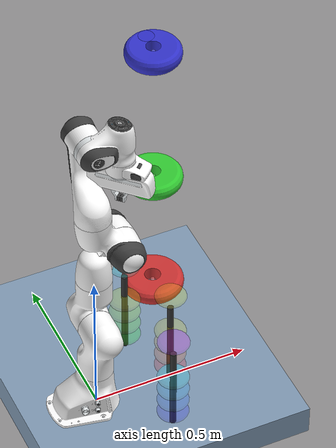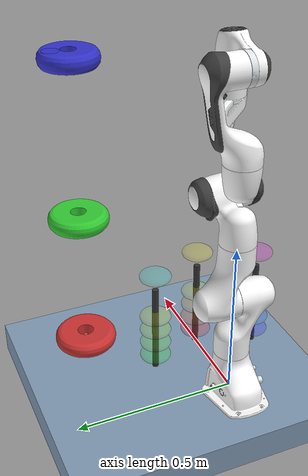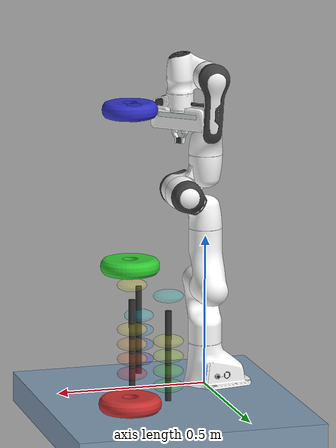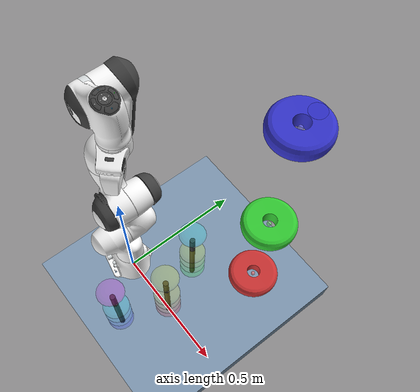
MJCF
<!-- MUJOCO PANDA HANOI SCENE CONFIGURATION                          -->
<!-- This file defines a complete Hanoi Tower solving scene with:     -->
<!-- - Franka Emika Panda robot arm with gripper                     -->
<!-- - Three posts (A, B, C) for the Tower of Hanoi puzzle          -->
<!-- - Three different-sized disks with collision geometry           -->
<!-- - IK target sites for precise manipulation                      -->
<!-- - Proper lighting and visual settings                           -->

<mujoco model="panda_hanoi_scene">

  <!-- GLOBAL SIMULATION SETTINGS                                    -->

  <compiler
    angle="radian"
    meshdir="../../../models/robots/arms/franka_emika_panda/assets"
    autolimits="true"/>

  <option timestep="0.002" integrator="RK4" gravity="0 0 -3.0"
          density="1.0" viscosity="1e-4">
    <flag warmstart="enable"/>
  </option>

  <visual>
    <headlight ambient="0.3 0.3 0.3" diffuse="0.7 0.7 0.7"/>
    <global offwidth="1920" offheight="1080"/>
    <quality shadowsize="2048" offsamples="8"/>
  </visual>

  <!-- DEFAULT CLASSES AND STYLING                                   -->

  <default>
    <!-- Main Panda robot defaults -->
    <default class="panda">
      <material specular="0.5" shininess="0.25" />
      <joint armature="0.1" damping="1" axis="0 0 1" range="-2.8973 2.8973" />
      <general dyntype="none" biastype="affine" ctrlrange="-2.8973 2.8973" forcerange="-87 87" />

      <!-- Gripper finger defaults -->
      <default class="finger">
        <joint axis="0 1 0" type="slide" range="0 0.04" />
      </default>

      <!-- Visual geometry defaults -->
      <default class="visual">
        <geom type="mesh" contype="0" conaffinity="0" group="2" />
      </default>

      <!-- Collision geometry defaults -->
      <default class="collision">
        <geom type="mesh" group="3" />
        <!-- Fingertip collision geometries for precise grasping -->
        <default class="fingertip_pad_collision_1">
          <geom type="box" size="0.0085 0.004 0.0085" pos="0 0.0055 0.0445" material="gripper" />
        </default>
        <default class="fingertip_pad_collision_2">
          <geom type="box" size="0.003 0.002 0.003" pos="0.0055 0.002 0.05" material="gripper" />
        </default>
        <default class="fingertip_pad_collision_3">
          <geom type="box" size="0.003 0.002 0.003" pos="-0.0055 0.002 0.05" material="gripper" />
        </default>
        <default class="fingertip_pad_collision_4">
          <geom type="box" size="0.003 0.002 0.0035" pos="0.0055 0.002 0.0395" material="gripper" />
        </default>
        <default class="fingertip_pad_collision_5">
          <geom type="box" size="0.003 0.002 0.0035" pos="-0.0055 0.002 0.0395" material="gripper" />
        </default>
      </default>
    </default>
  </default>

  <!-- ASSETS: TEXTURES, MATERIALS, AND MESHES                       -->

  <asset>
    <!-- ===================== ENVIRONMENT ASSETS =================== -->
    <texture name="checker_floor" type="2d" builtin="checker"
             rgb1="0.2 0.3 0.4" rgb2="0.8 0.9 1.0" width="128" height="128"/>
    <texture name="gradient_sky" type="skybox" builtin="gradient"
             rgb1="0.4 0.6 0.8" rgb2="0.1 0.2 0.4" width="1024" height="1024"
             mark="random" markrgb="1 1 1"/>
    <material name="floor_material" texture="checker_floor" texrepeat="8 8" reflectance="0.1"/>

    <!-- ===================== ROBOT MATERIALS ====================== -->
    <material class="panda" name="white" rgba="1 1 1 1"/>
    <material class="panda" name="off_white" rgba="0.901961 0.921569 0.929412 1"/>
    <material class="panda" name="black" rgba="0.25 0.25 0.25 1"/>
    <material class="panda" name="green" rgba="0 1 0 1"/>
    <material class="panda" name="gripper" rgba="0.8 0.8 0.8 1"/>
    <material class="panda" name="light_blue" rgba="0.039216 0.541176 0.780392 1"/>

    <!-- ================= ROBOT COLLISION MESHES ================== -->
    <!-- Collision meshes for physics simulation -->
    <mesh name="link0_c" file="link0.stl"/>
    <mesh name="link1_c" file="link1.stl"/>
    <mesh name="link2_c" file="link2.stl"/>
    <mesh name="link3_c" file="link3.stl"/>
    <mesh name="link4_c" file="link4.stl"/>
    <mesh name="link5_c0" file="link5_collision_0.obj"/>
    <mesh name="link5_c1" file="link5_collision_1.obj"/>
    <mesh name="link5_c2" file="link5_collision_2.obj"/>
    <mesh name="link6_c" file="link6.stl"/>
    <mesh name="link7_c" file="link7.stl"/>
    <mesh name="hand_c" file="hand.stl"/>

    <!-- ================== ROBOT VISUAL MESHES ==================== -->
    <!-- Visual meshes for appearance (Link 0 - Base) -->
    <mesh file="link0_0.obj"/>
    <mesh file="link0_1.obj"/>
    <mesh file="link0_2.obj"/>
    <mesh file="link0_3.obj"/>
    <mesh file="link0_4.obj"/>
    <mesh file="link0_5.obj"/>
    <mesh file="link0_7.obj"/>
    <mesh file="link0_8.obj"/>
    <mesh file="link0_9.obj"/>
    <mesh file="link0_10.obj"/>
    <mesh file="link0_11.obj"/>

    <!-- Link 1 visual mesh -->
    <mesh file="link1.obj"/>

    <!-- Link 2 visual mesh -->
    <mesh file="link2.obj"/>

    <!-- Link 3 visual meshes -->
    <mesh file="link3_0.obj"/>
    <mesh file="link3_1.obj"/>
    <mesh file="link3_2.obj"/>
    <mesh file="link3_3.obj"/>

    <!-- Link 4 visual meshes -->
    <mesh file="link4_0.obj"/>
    <mesh file="link4_1.obj"/>
    <mesh file="link4_2.obj"/>
    <mesh file="link4_3.obj"/>

    <!-- Link 5 visual meshes -->
    <mesh file="link5_0.obj"/>
    <mesh file="link5_1.obj"/>
    <mesh file="link5_2.obj"/>

    <!-- Link 6 visual meshes -->
    <mesh file="link6_0.obj"/>
    <mesh file="link6_1.obj"/>
    <mesh file="link6_2.obj"/>
    <mesh file="link6_3.obj"/>
    <mesh file="link6_4.obj"/>
    <mesh file="link6_5.obj"/>
    <mesh file="link6_6.obj"/>
    <mesh file="link6_7.obj"/>
    <mesh file="link6_8.obj"/>
    <mesh file="link6_9.obj"/>
    <mesh file="link6_10.obj"/>
    <mesh file="link6_11.obj"/>
    <mesh file="link6_12.obj"/>
    <mesh file="link6_13.obj"/>
    <mesh file="link6_14.obj"/>
    <mesh file="link6_15.obj"/>
    <mesh file="link6_16.obj"/>

    <!-- Link 7 visual meshes -->
    <mesh file="link7_0.obj"/>
    <mesh file="link7_1.obj"/>
    <mesh file="link7_2.obj"/>
    <mesh file="link7_3.obj"/>
    <mesh file="link7_4.obj"/>
    <mesh file="link7_5.obj"/>
    <mesh file="link7_6.obj"/>
    <mesh file="link7_7.obj"/>

    <!-- Hand/Gripper visual meshes -->
    <mesh file="hand_0.obj"/>
    <mesh file="hand_1.obj"/>
    <mesh file="hand_2.obj"/>
    <mesh file="hand_3.obj"/>
    <mesh file="hand_4.obj"/>

    <!-- Finger visual meshes -->
    <mesh file="finger_0.obj"/>
    <mesh file="finger_1.obj"/>

    <!-- ==================== HANOI DISK MESHES ==================== -->
    <!-- Scaled disk meshes for different sizes -->
    <mesh scale="0.4 0.4 0.5" name="donut_mesh1" file="../../../../../hanoi/models/hanoi_disk.stl"/>
    <mesh scale="0.375 0.375 0.5" name="donut_mesh2" file="../../../../../hanoi/models/hanoi_disk.stl"/>
    <mesh scale="0.35 0.35 0.5" name="donut_mesh3" file="../../../../../hanoi/models/hanoi_disk.stl"/>
  </asset>

  <!-- WORLD BODY: SCENE GEOMETRY AND OBJECTS                        -->

  <worldbody>
    <!-- ==================== LIGHTING SETUP ======================= -->
    <light name="top" pos="0 0 2" mode="trackcom"/>

    <!-- ================= FRANKA EMIKA PANDA ROBOT ================ -->
    <!-- Base link (Link 0) - Robot foundation -->
    <body name="link0" childclass="panda">
      <inertial mass="0.629769" pos="-0.041018 -0.00014 0.049974"
                fullinertia="0.00315 0.00388 0.004285 8.2904e-7 0.00015 8.2299e-6" />
      <!-- Visual components -->
      <geom mesh="link0_0" material="off_white" class="visual" />
      <geom mesh="link0_1" material="black" class="visual" />
      <geom mesh="link0_2" material="off_white" class="visual" />
      <geom mesh="link0_3" material="black" class="visual" />
      <geom mesh="link0_4" material="off_white" class="visual" />
      <geom mesh="link0_5" material="black" class="visual" />
      <geom mesh="link0_7" material="white" class="visual" />
      <geom mesh="link0_8" material="white" class="visual" />
      <geom mesh="link0_9" material="black" class="visual" />
      <geom mesh="link0_10" material="off_white" class="visual" />
      <geom mesh="link0_11" material="white" class="visual" />
      <!-- Collision geometry -->
      <geom mesh="link0_c" class="collision" />

      <!-- Link 1 - First joint -->
      <body name="link1" pos="0 0 0.333">
        <inertial mass="4.970684" pos="0.003875 0.002081 -0.04762"
                  fullinertia="0.70337 0.70661 0.0091170 -0.00013900 0.0067720 0.019169" />
        <joint name="joint1" />
        <geom material="white" mesh="link1" class="visual" />
        <geom mesh="link1_c" class="collision" />

        <!-- Link 2 - Second joint (shoulder) -->
        <body name="link2" quat="1 -1 0 0">
          <inertial mass="0.646926" pos="-0.003141 -0.02872 0.003495"
                    fullinertia="0.0079620 2.8110e-2 2.5995e-2 -3.925e-3 1.0254e-2 7.04e-4" />
          <joint name="joint2" range="-1.7628 1.7628" />
          <geom material="white" mesh="link2" class="visual" />
          <geom mesh="link2_c" class="collision" />

          <!-- Link 3 - Third joint (upper arm) -->
          <body name="link3" pos="0 -0.316 0" quat="1 1 0 0">
            <joint name="joint3" />
            <inertial mass="3.228604" pos="2.7518e-2 3.9252e-2 -6.6502e-2"
                      fullinertia="3.7242e-2 3.6155e-2 1.083e-2 -4.761e-3 -1.1396e-2 -1.2805e-2" />
            <geom mesh="link3_0" material="white" class="visual" />
            <geom mesh="link3_1" material="white" class="visual" />
            <geom mesh="link3_2" material="white" class="visual" />
            <geom mesh="link3_3" material="black" class="visual" />
            <geom mesh="link3_c" class="collision" />

            <!-- Link 4 - Fourth joint (elbow) -->
            <body name="link4" pos="0.0825 0 0" quat="1 1 0 0">
              <inertial mass="3.587895" pos="-5.317e-2 1.04419e-1 2.7454e-2"
                        fullinertia="2.5853e-2 1.9552e-2 2.8323e-2 7.796e-3 -1.332e-3 8.641e-3" />
              <joint name="joint4" range="-3.0718 -0.0698" />
              <geom mesh="link4_0" material="white" class="visual" />
              <geom mesh="link4_1" material="white" class="visual" />
              <geom mesh="link4_2" material="black" class="visual" />
              <geom mesh="link4_3" material="white" class="visual" />
              <geom mesh="link4_c" class="collision" />

              <!-- Link 5 - Fifth joint (forearm) -->
              <body name="link5" pos="-0.0825 0.384 0" quat="1 -1 0 0">
                <inertial mass="1.225946" pos="-1.1953e-2 4.1065e-2 -3.8437e-2"
                          fullinertia="3.5549e-2 2.9474e-2 8.627e-3 -2.117e-3 -4.037e-3 2.29e-4" />
                <joint name="joint5" />
                <geom mesh="link5_0" material="black" class="visual" />
                <geom mesh="link5_1" material="white" class="visual" />
                <geom mesh="link5_2" material="white" class="visual" />
                <geom mesh="link5_c0" class="collision" />
                <geom mesh="link5_c1" class="collision" />
                <geom mesh="link5_c2" class="collision" />

                <!-- Link 6 - Sixth joint (wrist rotate) -->
                <body name="link6" quat="1 1 0 0">
                  <inertial mass="1.666555" pos="6.0149e-2 -1.4117e-2 -1.0517e-2"
                            fullinertia="1.964e-3 4.354e-3 5.433e-3 1.09e-4 -1.158e-3 3.41e-4" />
                  <joint name="joint6" range="-0.0175 3.7525" />
                  <geom mesh="link6_0" material="off_white" class="visual" />
                  <geom mesh="link6_1" material="white" class="visual" />
                  <geom mesh="link6_2" material="black" class="visual" />
                  <geom mesh="link6_3" material="white" class="visual" />
                  <geom mesh="link6_4" material="white" class="visual" />
                  <geom mesh="link6_5" material="white" class="visual" />
                  <geom mesh="link6_6" material="white" class="visual" />
                  <geom mesh="link6_7" material="light_blue" class="visual" />
                  <geom mesh="link6_8" material="light_blue" class="visual" />
                  <geom mesh="link6_9" material="black" class="visual" />
                  <geom mesh="link6_10" material="black" class="visual" />
                  <geom mesh="link6_11" material="white" class="visual" />
                  <geom mesh="link6_12" material="green" class="visual" />
                  <geom mesh="link6_13" material="white" class="visual" />
                  <geom mesh="link6_14" material="black" class="visual" />
                  <geom mesh="link6_15" material="black" class="visual" />
                  <geom mesh="link6_16" material="white" class="visual" />
                  <geom mesh="link6_c" class="collision" />

                  <!-- Link 7 - Seventh joint (wrist bend) -->
                  <body name="link7" pos="0.088 0 0" quat="1 1 0 0">
                    <inertial mass="7.35522e-01" pos="1.0517e-2 -4.252e-3 6.1597e-2"
                              fullinertia="1.2516e-2 1.0027e-2 4.815e-3 -4.28e-4 -1.196e-3 -7.41e-4" />
                    <joint name="joint7" />
                    <geom mesh="link7_0" material="white" class="visual" />
                    <geom mesh="link7_1" material="black" class="visual" />
                    <geom mesh="link7_2" material="black" class="visual" />
                    <geom mesh="link7_3" material="black" class="visual" />
                    <geom mesh="link7_4" material="black" class="visual" />
                    <geom mesh="link7_5" material="black" class="visual" />
                    <geom mesh="link7_6" material="black" class="visual" />
                    <geom mesh="link7_7" material="white" class="visual" />
                    <geom mesh="link7_c" class="collision" />

                    <!-- Hand/Gripper assembly -->
                    <body name="hand" pos="0 0 0.107" quat="0.9238795 0 0 -0.3826834">
                      <inertial mass="0.73" pos="-0.01 0 0.03" diaginertia="0.001 0.0025 0.0017" />
                      <geom mesh="hand_0" material="off_white" class="visual" />
                      <geom mesh="hand_1" material="black" class="visual" />
                      <geom mesh="hand_2" material="black" class="visual" />
                      <geom mesh="hand_3" material="white" class="visual" />
                      <geom mesh="hand_4" material="off_white" class="visual" />
                      <geom mesh="hand_c" class="collision" />

                      <!-- Left finger -->
                      <body name="left_finger" pos="0 0 0.0584">
                        <inertial mass="0.015" pos="0 0 0" diaginertia="2.375e-6 2.375e-6 7.5e-7" />
                        <joint name="finger_joint1" class="finger" />
                        <geom mesh="finger_0" material="off_white" class="visual" />
                        <geom mesh="finger_1" material="black" class="visual" />
                        <geom mesh="finger_0" class="collision" />
                        <!-- Fingertip collision pads for precise grasping -->
                        <geom class="fingertip_pad_collision_1" />
                        <geom class="fingertip_pad_collision_2" />
                        <geom class="fingertip_pad_collision_3" />
                        <geom class="fingertip_pad_collision_4" />
                        <geom class="fingertip_pad_collision_5" />
                      </body>

                      <!-- Right finger -->
                      <body name="right_finger" pos="0 0 0.0584" quat="0 0 0 1">
                        <inertial mass="0.015" pos="0 0 0" diaginertia="2.375e-6 2.375e-6 7.5e-7" />
                        <joint name="finger_joint2" class="finger" />
                        <geom mesh="finger_0" material="off_white" class="visual" />
                        <geom mesh="finger_1" material="black" class="visual" />
                        <geom mesh="finger_0" class="collision" />
                        <!-- Fingertip collision pads for precise grasping -->
                        <geom class="fingertip_pad_collision_1" />
                        <geom class="fingertip_pad_collision_2" />
                        <geom class="fingertip_pad_collision_3" />
                        <geom class="fingertip_pad_collision_4" />
                        <geom class="fingertip_pad_collision_5" />
                      </body>
                    </body>
                  </body>
                </body>
              </body>
            </body>
          </body>
        </body>
      </body>
    </body>

    <!-- =================== ENVIRONMENT OBJECTS =================== -->
    <!-- Floor surface -->
    <geom name="floor" pos="0 0 -0.05" size="2 2 0.05" type="box" material="floor_material"/>

    <!-- ================= HANOI TOWER POSTS ======================= -->
    <!-- Post A (Starting position - typically holds all disks) -->
    <body name="postA" pos="0.25 0 0.15">
      <inertial pos="0 0 0" mass="3" diaginertia="0.005 0.005 0.005"/>
      <geom name="post_blockA" type="cylinder" size="0.01 0.15" rgba="0.2 0.2 0.2 1.0"/>
      <!-- IK target sites above post A at different heights -->
      <site name="postA_base" pos="0 0 -0.10" size="0.05 0.05 0.02" type="ellipsoid" rgba="1 0 0 0.05"/>
      <site name="postA_level1" pos="0 0 -0.05" size="0.05 0.05 0.02" type="ellipsoid" rgba="1 0.3 0 0.05"/>
      <site name="postA_level2" pos="0 0 0.0" size="0.05 0.05 0.02" type="ellipsoid" rgba="1 0.6 0 0.05"/>
      <site name="postA_level3" pos="0 0 0.05" size="0.05 0.05 0.02" type="ellipsoid" rgba="1 0.9 0 0.05"/>
      <site name="postA_approach" pos="0 0 0.20" size="0.05 0.05 0.02" type="ellipsoid" rgba="1 1 0 0.05"/>
    </body>

    <!-- Post B (Intermediate position) -->
    <body name="postB" pos="0.177 0.177 0.15">
      <inertial pos="0 0 0" mass="3" diaginertia="0.005 0.005 0.005"/>
      <geom name="post_blockB" type="cylinder" size="0.01 0.15" rgba="0.2 0.2 0.2 1.0"/>
      <!-- IK target sites above post B at different heights -->
      <site name="postB_base" pos="0 0 -0.1" size="0.05 0.05 0.02" type="ellipsoid" rgba="0 1 0 0.05"/>
      <site name="postB_level1" pos="0 0 -0.05" size="0.05 0.05 0.02" type="ellipsoid" rgba="0.3 1 0 0.05"/>
      <site name="postB_level2" pos="0 0 0.0" size="0.05 0.05 0.02" type="ellipsoid" rgba="0.6 1 0 0.05"/>
      <site name="postB_level3" pos="0 0 0.05" size="0.05 0.05 0.02" type="ellipsoid" rgba="0.9 1 0 0.05"/>
      <site name="postB_approach" pos="0 0 0.20" size="0.05 0.05 0.02" type="ellipsoid" rgba="0 1 1 0.05"/>
    </body>

    <!-- Post C (Final destination) -->
    <body name="postC" pos="0.177 -0.177 0.15">
      <inertial pos="0 0 0" mass="3" diaginertia="0.005 0.005 0.005"/>
      <geom name="post_blockC" type="cylinder" size="0.01 0.15" rgba="0.2 0.2 0.2 1.0"/>
      <!-- IK target sites above post C at different heights -->
      <site name="postC_base" pos="0 0 -0.1" size="0.05 0.05 0.02" type="ellipsoid" rgba="0 0 1 0.05"/>
      <site name="postC_level1" pos="0 0 -0.05" size="0.05 0.05 0.02" type="ellipsoid" rgba="0 0.3 1 0.05"/>
      <site name="postC_level2" pos="0 0 0.0" size="0.05 0.05 0.02" type="ellipsoid" rgba="0 0.6 1 0.05"/>
      <site name="postC_level3" pos="0 0 0.05" size="0.05 0.05 0.02" type="ellipsoid" rgba="0 0.9 1 0.05"/>
      <site name="postC_approach" pos="0 0 0.20" size="0.05 0.05 0.02" type="ellipsoid" rgba="1 0 1 0.05"/>
    </body>

    <!-- ==================== HANOI DISKS ========================== -->

    <!-- Disk 1 (Largest) - Red -->
    <body name="disk_body1" pos="0.354 0.354 0.05">
      <freejoint/>
      <inertial pos="0 0 0" mass="0.25" diaginertia="0.005 0.005 0.005"/>
      <!-- Visual mesh for appearance (no collision) -->
      <geom name="disk_block1_visual" type="mesh" mesh="donut_mesh1" rgba="0.8 0.2 0.2 1"
            contype="0" conaffinity="0"/>
      <!-- IK target sites for grasping disk 1 -->
      <site name="disk1_center" pos="0 0 0" size="0.008" rgba="1 0.5 0.5 0.7"/>
      <!-- Collision geometry: 8 small cylinders arranged in a ring to approximate donut shape -->
      <geom name="disk_seg1_1" type="cylinder" size="0.025 0.025" pos="0.05 0 0" rgba="0.8 0.2 0.2 0"/>
      <geom name="disk_seg1_2" type="cylinder" size="0.025 0.025" pos="0.035 0.035 0" rgba="0.8 0.2 0.2 0"/>
      <geom name="disk_seg1_3" type="cylinder" size="0.025 0.025" pos="0 0.05 0" rgba="0.8 0.2 0.2 0"/>
      <geom name="disk_seg1_4" type="cylinder" size="0.025 0.025" pos="-0.035 0.035 0" rgba="0.8 0.2 0.2 0"/>
      <geom name="disk_seg1_5" type="cylinder" size="0.025 0.025" pos="-0.05 0 0" rgba="0.8 0.2 0.2 0"/>
      <geom name="disk_seg1_6" type="cylinder" size="0.025 0.025" pos="-0.035 -0.035 0" rgba="0.8 0.2 0.2 0"/>
      <geom name="disk_seg1_7" type="cylinder" size="0.025 0.025" pos="0 -0.05 0" rgba="0.8 0.2 0.2 0"/>
      <geom name="disk_seg1_8" type="cylinder" size="0.025 0.025" pos="0.035 -0.035 0" rgba="0.8 0.2 0.2 0"/>
    </body>

    <!-- Disk 2 (Medium) - Green -->
    <body name="disk_body2" pos="0.354 0.354 0.5">
      <freejoint/>
      <inertial pos="0 0 0" mass="0.25" diaginertia="0.005 0.005 0.005"/>
      <!-- Visual mesh for appearance (no collision) -->
      <geom name="disk_block2_visual" type="mesh" mesh="donut_mesh2" rgba="0.2 0.8 0.2 1"
            contype="0" conaffinity="0"/>
      <!-- IK target sites for grasping disk 2 -->
      <site name="disk2_center" pos="0 0 0" size="0.008" rgba="0.5 1 0.5 0.7"/>
      <!-- Collision geometry: 8 small cylinders arranged in a ring to approximate donut shape -->
      <geom name="disk_seg2_1" type="cylinder" size="0.025 0.025" pos="0.05 0 0" rgba="0.2 0.8 0.2 0"/>
      <geom name="disk_seg2_2" type="cylinder" size="0.025 0.025" pos="0.035 0.035 0" rgba="0.2 0.8 0.2 0"/>
      <geom name="disk_seg2_3" type="cylinder" size="0.025 0.025" pos="0 0.05 0" rgba="0.2 0.8 0.2 0"/>
      <geom name="disk_seg2_4" type="cylinder" size="0.025 0.025" pos="-0.035 0.035 0" rgba="0.2 0.8 0.2 0"/>
      <geom name="disk_seg2_5" type="cylinder" size="0.025 0.025" pos="-0.05 0 0" rgba="0.2 0.8 0.2 0"/>
      <geom name="disk_seg2_6" type="cylinder" size="0.025 0.025" pos="-0.035 -0.035 0" rgba="0.2 0.8 0.2 0"/>
      <geom name="disk_seg2_7" type="cylinder" size="0.025 0.025" pos="0 -0.05 0" rgba="0.2 0.8 0.2 0"/>
      <geom name="disk_seg2_8" type="cylinder" size="0.025 0.025" pos="0.035 -0.035 0" rgba="0.2 0.8 0.2 0"/>
    </body>

    <!-- Disk 3 (Smallest) - Blue -->
    <body name="disk_body3" pos="0.354 0.354 1">
      <freejoint/>
      <inertial pos="0 0 0" mass="0.25" diaginertia="0.005 0.005 0.005"/>
      <!-- Visual mesh for appearance (no collision) -->
      <geom name="disk_block3_visual" type="mesh" mesh="donut_mesh3" rgba="0.2 0.2 0.8 1"
            contype="0" conaffinity="0"/>
      <!-- IK target sites for grasping disk 3 -->
      <site name="disk3_center" pos="0 0 0" size="0.008" rgba="0.5 0.5 1 0.7"/>
      <!-- Collision geometry: 8 small cylinders arranged in a ring to approximate donut shape -->
      <geom name="disk_seg3_1" type="cylinder" size="0.025 0.025" pos="0.05 0 0" rgba="0.2 0.2 0.8 0"/>
      <geom name="disk_seg3_2" type="cylinder" size="0.025 0.025" pos="0.035 0.035 0" rgba="0.2 0.2 0.8 0"/>
      <geom name="disk_seg3_3" type="cylinder" size="0.025 0.025" pos="0 0.05 0" rgba="0.2 0.2 0.8 0.3"/>
      <geom name="disk_seg3_4" type="cylinder" size="0.025 0.025" pos="-0.035 0.035 0" rgba="0.2 0.2 0.8 0"/>
      <geom name="disk_seg3_5" type="cylinder" size="0.025 0.025" pos="-0.05 0 0" rgba="0.2 0.2 0.8 0"/>
      <geom name="disk_seg3_6" type="cylinder" size="0.025 0.025" pos="-0.035 -0.035 0" rgba="0.2 0.2 0.8 0"/>
      <geom name="disk_seg3_7" type="cylinder" size="0.025 0.025" pos="0 -0.05 0" rgba="0.2 0.2 0.8 0"/>
      <geom name="disk_seg3_8" type="cylinder" size="0.025 0.025" pos="0.035 -0.035 0" rgba="0.2 0.2 0.8 0"/>
    </body>

    <!-- ================== ADDITIONAL LIGHTING ==================== -->
    <light name="main_light" pos="0 0 3" ambient="0.3 0.3 0.3" diffuse="0.9 0.9 0.9" specular="0.5 0.5 0.5"/>
    <light name="side_light" pos="3 3 2" dir="-1 -1 -0.5" ambient="0.1 0.1 0.2"
           diffuse="0.6 0.7 0.8" specular="0.2 0.2 0.3" directional="true"/>
  </worldbody>

  <!-- MECHANICAL CONSTRAINTS                                        -->

  <!-- Tendon constraint for synchronized gripper finger movement -->
  <tendon>
    <fixed name="split">
      <joint joint="finger_joint1" coef="0.5" />
      <joint joint="finger_joint2" coef="0.5" />
    </fixed>
  </tendon>

  <!-- Joint equality constraint to keep fingers synchronized -->
  <equality>
    <joint joint1="finger_joint1" joint2="finger_joint2"
           solimp="0.95 0.99 0.001" solref="0.005 1" />
  </equality>

  <!-- ACTUATORS: ROBOT JOINT CONTROL                                -->

  <actuator>
    <!-- Arm joint actuators with PID control parameters -->
    <general class="panda" name="actuator1" joint="joint1"
             gainprm="150" biasprm="0 -150 -15" />
    <general class="panda" name="actuator2" joint="joint2"
             gainprm="150" biasprm="0 -150 -15" ctrlrange="-1.7628 1.7628" />
    <general class="panda" name="actuator3" joint="joint3"
             gainprm="150" biasprm="0 -150 -15" />
    <general class="panda" name="actuator4" joint="joint4"
             gainprm="150" biasprm="0 -150 -15" ctrlrange="-3.0718 -0.0698" />
    <general class="panda" name="actuator5" joint="joint5"
             gainprm="100" biasprm="0 -100 -10" forcerange="-12 12" />
    <general class="panda" name="actuator6" joint="joint6"
             gainprm="100" biasprm="0 -100 -10" forcerange="-12 12" ctrlrange="-0.0175 3.7525" />
    <general class="panda" name="actuator7" joint="joint7"
             gainprm="100" biasprm="0 -100 -10" forcerange="-12 12" />

    <!-- Gripper actuator (controls both fingers via tendon) -->
    <general class="panda" name="actuator8" tendon="split"
             forcerange="-200 200" ctrlrange="0 255"
             gainprm="0.02 0 0" biasprm="0 -200 -20" />
  </actuator>

  <!-- PREDEFINED KEYFRAMES                                          -->

  <keyframe>
    <!-- Home position: Robot in ready pose with gripper open -->
    <key name="home"
         qpos="0 0 0 -1.57079 0 1.57079 -0.7853 0.04 0.04"
         ctrl="0 0 0 -1.57079 0 1.57079 -0.7853 255" />
  </keyframe>

</mujoco>
